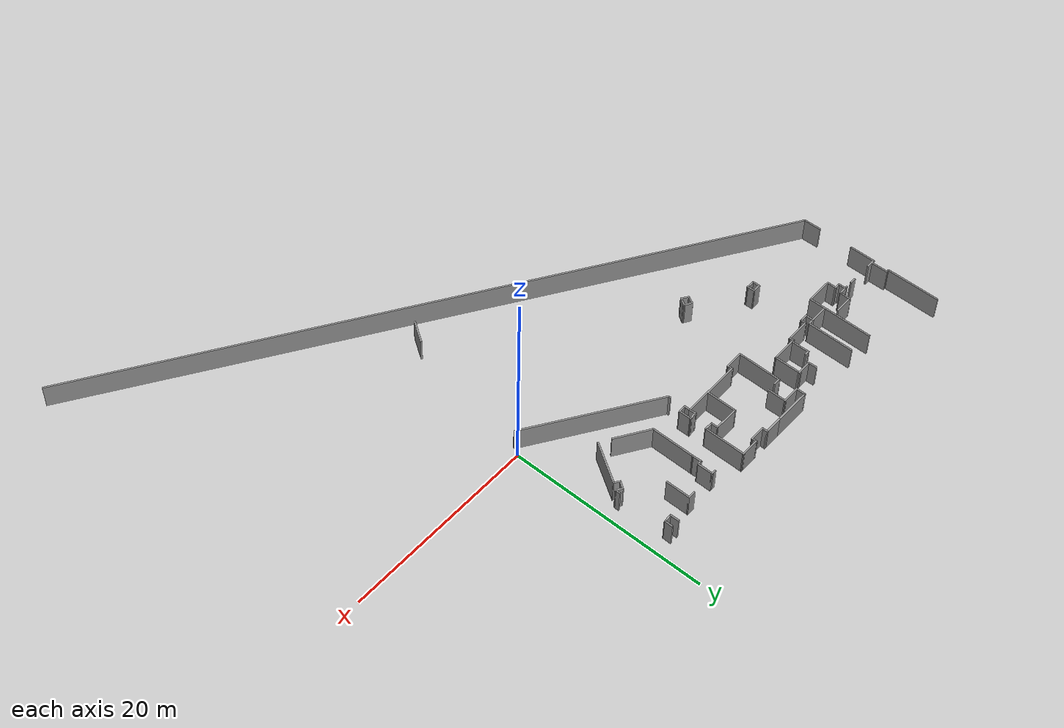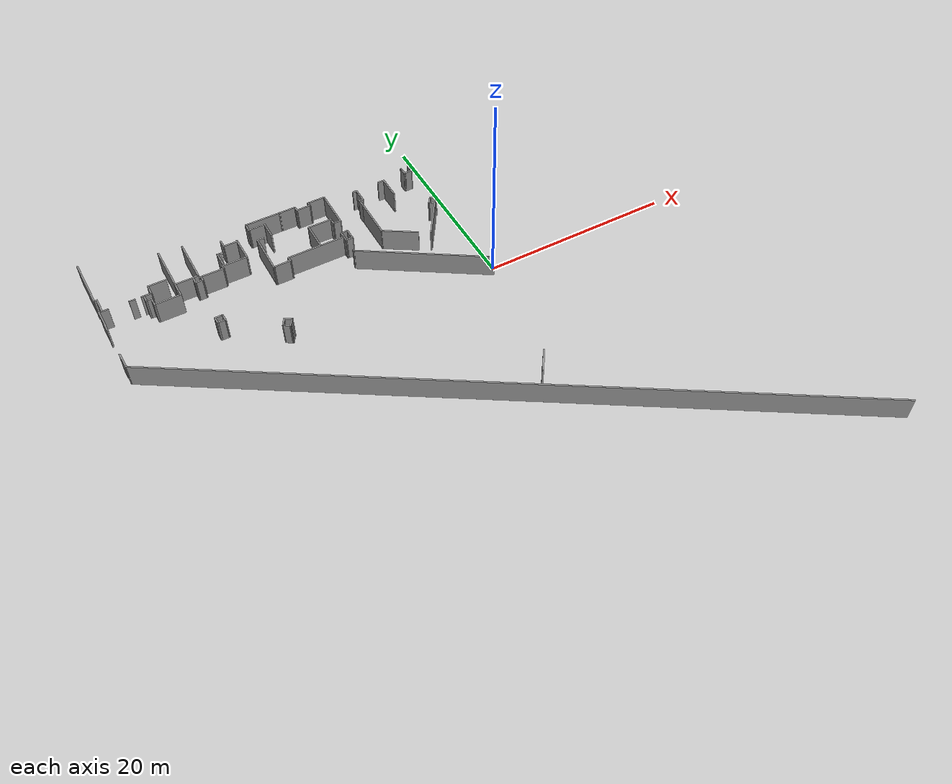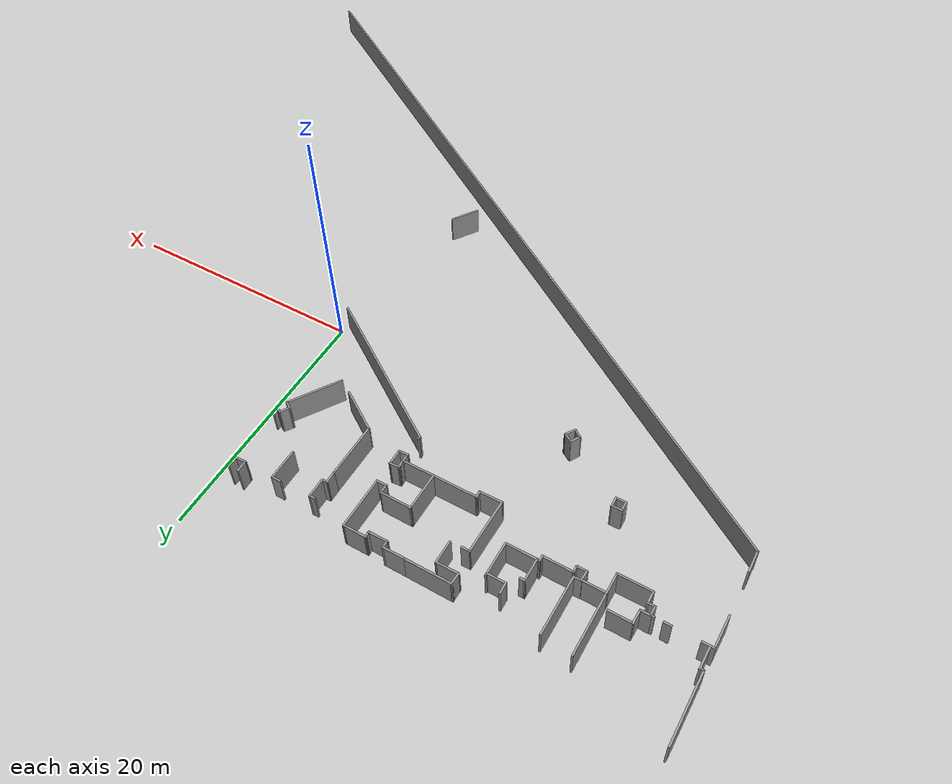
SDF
<sdf version="1.7">
 <model name="HopperFloorGround_Full">
  <pose>0.395792 0.11413 0 0 -0 0</pose>
  <link name="Wall_0">
   <collision name="Wall_0_Collision">
    <geometry><box><size>71.6402 0.15 2.5</size></box></geometry>
    <pose>0 0 1.25 0 -0 0</pose>
   </collision>
   <visual name="Wall_0_Visual">
    <pose>0 0 1.25 0 -0 0</pose>
    <geometry><box><size>71.6402 0.15 2.5</size></box></geometry>
    <material>
     <script><uri>file://media/materials/scripts/gazebo.material</uri><name>Gazebo/Grey</name></script>
     <ambient>1 1 1 1</ambient>
    </material>
    <meta><layer>0</layer></meta>
   </visual>
   <pose>-7.1575 -15.8591 0 0 -0 -0.566616</pose>
  </link>
  <link name="Wall_108">
   <collision name="Wall_108_Collision">
    <geometry><box><size>1.94011 0.15 2.5</size></box></geometry>
    <pose>0 0 1.25 0 -0 0</pose>
   </collision>
   <visual name="Wall_108_Visual">
    <pose>0 0 1.25 0 -0 0</pose>
    <geometry><box><size>1.94011 0.15 2.5</size></box></geometry>
    <material>
     <script><uri>file://media/materials/scripts/gazebo.material</uri><name>Gazebo/Grey</name></script>
     <ambient>1 1 1 1</ambient>
    </material>
    <meta><layer>0</layer></meta>
   </visual>
   <pose>-31.2976 12.103 0 0 -0 3.14159</pose>
  </link>
  <link name="Wall_109">
   <collision name="Wall_109_Collision">
    <geometry><box><size>1.1961 0.15 2.5</size></box></geometry>
    <pose>0 0 1.25 0 -0 0</pose>
   </collision>
   <visual name="Wall_109_Visual">
    <pose>0 0 1.25 0 -0 0</pose>
    <geometry><box><size>1.1961 0.15 2.5</size></box></geometry>
    <material>
     <script><uri>file://media/materials/scripts/gazebo.material</uri><name>Gazebo/Grey</name></script>
     <ambient>1 1 1 1</ambient>
    </material>
    <meta><layer>0</layer></meta>
   </visual>
   <pose>-32.2027 11.58 0 0 -0 -1.59003</pose>
  </link>
  <link name="Wall_110">
   <collision name="Wall_110_Collision">
    <geometry><box><size>0.914316 0.15 2.5</size></box></geometry>
    <pose>0 0 1.25 0 -0 0</pose>
   </collision>
   <visual name="Wall_110_Visual">
    <pose>0 0 1.25 0 -0 0</pose>
    <geometry><box><size>0.914316 0.15 2.5</size></box></geometry>
    <material>
     <script><uri>file://media/materials/scripts/gazebo.material</uri><name>Gazebo/Grey</name></script>
     <ambient>1 1 1 1</ambient>
    </material>
    <meta><layer>0</layer></meta>
   </visual>
   <pose>-32.5949 11.0571 0 0 -0 3.14159</pose>
  </link>
  <link name="Wall_112">
   <collision name="Wall_112_Collision">
    <geometry><box><size>0.75 0.15 2.5</size></box></geometry>
    <pose>0 0 1.25 0 -0 0</pose>
   </collision>
   <visual name="Wall_112_Visual">
    <pose>0 0 1.25 0 -0 0</pose>
    <geometry><box><size>0.75 0.15 2.5</size></box></geometry>
    <material>
     <script><uri>file://media/materials/scripts/gazebo.material</uri><name>Gazebo/Grey</name></script>
     <ambient>1 1 1 1</ambient>
    </material>
    <meta><layer>0</layer></meta>
   </visual>
   <pose>-20.122 12.8829 0 0 -0 3.14159</pose>
  </link>
  <link name="Wall_113">
   <collision name="Wall_113_Collision">
    <geometry><box><size>4.49402 0.15 2.5</size></box></geometry>
    <pose>0 0 1.25 0 -0 0</pose>
   </collision>
   <visual name="Wall_113_Visual">
    <pose>0 0 1.25 0 -0 0</pose>
    <geometry><box><size>4.49402 0.15 2.5</size></box></geometry>
    <material>
     <script><uri>file://media/materials/scripts/gazebo.material</uri><name>Gazebo/Grey</name></script>
     <ambient>1 1 1 1</ambient>
    </material>
    <meta><layer>0</layer></meta>
   </visual>
   <pose>-20.4432 10.711 0 0 -0 -1.58056</pose>
  </link>
  <link name="Wall_114">
   <collision name="Wall_114_Collision">
    <geometry><box><size>1.95508 0.15 2.5</size></box></geometry>
    <pose>0 0 1.25 0 -0 0</pose>
   </collision>
   <visual name="Wall_114_Visual">
    <pose>0 0 1.25 0 -0 0</pose>
    <geometry><box><size>1.95508 0.15 2.5</size></box></geometry>
    <material>
     <script><uri>file://media/materials/scripts/gazebo.material</uri><name>Gazebo/Grey</name></script>
     <ambient>1 1 1 1</ambient>
    </material>
    <meta><layer>0</layer></meta>
   </visual>
   <pose>-19.562 8.5544 0 0 -0 0.016948</pose>
  </link>
  <link name="Wall_115">
   <collision name="Wall_115_Collision">
    <geometry><box><size>0.609872 0.15 2.5</size></box></geometry>
    <pose>0 0 1.25 0 -0 0</pose>
   </collision>
   <visual name="Wall_115_Visual">
    <pose>0 0 1.25 0 -0 0</pose>
    <geometry><box><size>0.609872 0.15 2.5</size></box></geometry>
    <material>
     <script><uri>file://media/materials/scripts/gazebo.material</uri><name>Gazebo/Grey</name></script>
     <ambient>1 1 1 1</ambient>
    </material>
    <meta><layer>0</layer></meta>
   </visual>
   <pose>-18.6749 8.79912 0 0 -0 1.63736</pose>
  </link>
  <link name="Wall_116">
   <collision name="Wall_116_Collision">
    <geometry><box><size>6.23753 0.15 2.5</size></box></geometry>
    <pose>0 0 1.25 0 -0 0</pose>
   </collision>
   <visual name="Wall_116_Visual">
    <pose>0 0 1.25 0 -0 0</pose>
    <geometry><box><size>6.23753 0.15 2.5</size></box></geometry>
    <material>
     <script><uri>file://media/materials/scripts/gazebo.material</uri><name>Gazebo/Grey</name></script>
     <ambient>1 1 1 1</ambient>
    </material>
    <meta><layer>0</layer></meta>
   </visual>
   <pose>-15.6464 9.04384 0 0 -0 0.005025</pose>
  </link>
  <link name="Wall_117">
   <collision name="Wall_117_Collision">
    <geometry><box><size>0.731214 0.15 2.5</size></box></geometry>
    <pose>0 0 1.25 0 -0 0</pose>
   </collision>
   <visual name="Wall_117_Visual">
    <pose>0 0 1.25 0 -0 0</pose>
    <geometry><box><size>0.731214 0.15 2.5</size></box></geometry>
    <material>
     <script><uri>file://media/materials/scripts/gazebo.material</uri><name>Gazebo/Grey</name></script>
     <ambient>1 1 1 1</ambient>
    </material>
    <meta><layer>0</layer></meta>
   </visual>
   <pose>-12.6027 8.76853 0 0 -0 -1.5708</pose>
  </link>
  <link name="Wall_118">
   <collision name="Wall_118_Collision">
    <geometry><box><size>0.85424 0.15 2.5</size></box></geometry>
    <pose>0 0 1.25 0 -0 0</pose>
   </collision>
   <visual name="Wall_118_Visual">
    <pose>0 0 1.25 0 -0 0</pose>
    <geometry><box><size>0.85424 0.15 2.5</size></box></geometry>
    <material>
     <script><uri>file://media/materials/scripts/gazebo.material</uri><name>Gazebo/Grey</name></script>
     <ambient>1 1 1 1</ambient>
    </material>
    <meta><layer>0</layer></meta>
   </visual>
   <pose>-12.2509 8.49322 0 0 -0 0.043451</pose>
  </link>
  <link name="Wall_119">
   <collision name="Wall_119_Collision">
    <geometry><box><size>1.34302 0.15 2.5</size></box></geometry>
    <pose>0 0 1.25 0 -0 0</pose>
   </collision>
   <visual name="Wall_119_Visual">
    <pose>0 0 1.25 0 -0 0</pose>
    <geometry><box><size>1.34302 0.15 2.5</size></box></geometry>
    <material>
     <script><uri>file://media/materials/scripts/gazebo.material</uri><name>Gazebo/Grey</name></script>
     <ambient>1 1 1 1</ambient>
    </material>
    <meta><layer>0</layer></meta>
   </visual>
   <pose>-11.8991 9.10502 0 0 -0 1.5708</pose>
  </link>
  <link name="Wall_120">
   <collision name="Wall_120_Collision">
    <geometry><box><size>0.88671 0.15 2.5</size></box></geometry>
    <pose>0 0 1.25 0 -0 0</pose>
   </collision>
   <visual name="Wall_120_Visual">
    <pose>0 0 1.25 0 -0 0</pose>
    <geometry><box><size>0.88671 0.15 2.5</size></box></geometry>
    <material>
     <script><uri>file://media/materials/scripts/gazebo.material</uri><name>Gazebo/Grey</name></script>
     <ambient>1 1 1 1</ambient>
    </material>
    <meta><layer>0</layer></meta>
   </visual>
   <pose>-12.2662 9.67094 0 0 -0 -3.05845</pose>
  </link>
  <link name="Wall_121">
   <collision name="Wall_121_Collision">
    <geometry><box><size>0.704013 0.15 2.5</size></box></geometry>
    <pose>0 0 1.25 0 -0 0</pose>
   </collision>
   <visual name="Wall_121_Visual">
    <pose>0 0 1.25 0 -0 0</pose>
    <geometry><box><size>0.704013 0.15 2.5</size></box></geometry>
    <material>
     <script><uri>file://media/materials/scripts/gazebo.material</uri><name>Gazebo/Grey</name></script>
     <ambient>1 1 1 1</ambient>
    </material>
    <meta><layer>0</layer></meta>
   </visual>
   <pose>-12.6027 9.36504 0 0 -0 -1.46014</pose>
  </link>
  <link name="Wall_137">
   <collision name="Wall_137_Collision">
    <geometry><box><size>5 0.15 2.5</size></box></geometry>
    <pose>0 0 1.25 0 -0 0</pose>
   </collision>
   <visual name="Wall_137_Visual">
    <pose>0 0 1.25 0 -0 0</pose>
    <geometry><box><size>5 0.15 2.5</size></box></geometry>
    <material>
     <script><uri>file://media/materials/scripts/gazebo.material</uri><name>Gazebo/Grey</name></script>
     <ambient>1 1 1 1</ambient>
    </material>
    <meta><layer>0</layer></meta>
   </visual>
   <pose>-29.7968 13.4907 0 0 -0 1.5708</pose>
  </link>
  <link name="Wall_139">
   <collision name="Wall_139_Collision">
    <geometry><box><size>4.73481 0.15 2.5</size></box></geometry>
    <pose>0 0 1.25 0 -0 0</pose>
   </collision>
   <visual name="Wall_139_Visual">
    <pose>0 0 1.25 0 -0 0</pose>
    <geometry><box><size>4.73481 0.15 2.5</size></box></geometry>
    <material>
     <script><uri>file://media/materials/scripts/gazebo.material</uri><name>Gazebo/Grey</name></script>
     <ambient>1 1 1 1</ambient>
    </material>
    <meta><layer>0</layer></meta>
   </visual>
   <pose>-27.3873 13.3962 0 0 -0 -1.57203</pose>
  </link>
  <link name="Wall_140">
   <collision name="Wall_140_Collision">
    <geometry><box><size>0.679661 0.15 2.5</size></box></geometry>
    <pose>0 0 1.25 0 -0 0</pose>
   </collision>
   <visual name="Wall_140_Visual">
    <pose>0 0 1.25 0 -0 0</pose>
    <geometry><box><size>0.679661 0.15 2.5</size></box></geometry>
    <material>
     <script><uri>file://media/materials/scripts/gazebo.material</uri><name>Gazebo/Grey</name></script>
     <ambient>1 1 1 1</ambient>
    </material>
    <meta><layer>0</layer></meta>
   </visual>
   <pose>-27.6546 11.0906 0 0 -0 -3.09163</pose>
  </link>
  <link name="Wall_145">
   <collision name="Wall_145_Collision">
    <geometry><box><size>1.89901 0.15 2.5</size></box></geometry>
    <pose>0 0 1.25 0 -0 0</pose>
   </collision>
   <visual name="Wall_145_Visual">
    <pose>0 0 1.25 0 -0 0</pose>
    <geometry><box><size>1.89901 0.15 2.5</size></box></geometry>
    <material>
     <script><uri>file://media/materials/scripts/gazebo.material</uri><name>Gazebo/Grey</name></script>
     <ambient>1 1 1 1</ambient>
    </material>
    <meta><layer>0</layer></meta>
   </visual>
   <pose>-16.0528 15.5054 0 0 -0 0</pose>
  </link>
  <link name="Wall_148">
   <collision name="Wall_148_Collision">
    <geometry><box><size>3.84573 0.15 2.5</size></box></geometry>
    <pose>0 0 1.25 0 -0 0</pose>
   </collision>
   <visual name="Wall_148_Visual">
    <pose>0 0 1.25 0 -0 0</pose>
    <geometry><box><size>3.84573 0.15 2.5</size></box></geometry>
    <material>
     <script><uri>file://media/materials/scripts/gazebo.material</uri><name>Gazebo/Grey</name></script>
     <ambient>1 1 1 1</ambient>
    </material>
    <meta><layer>0</layer></meta>
   </visual>
   <pose>-18.7751 15.5087 0 0 -0 -0.001748</pose>
  </link>
  <link name="Wall_150">
   <collision name="Wall_150_Collision">
    <geometry><box><size>1 0.15 2.5</size></box></geometry>
    <pose>0 0 1.25 0 -0 0</pose>
   </collision>
   <visual name="Wall_150_Visual">
    <pose>0 0 1.25 0 -0 0</pose>
    <geometry><box><size>1 0.15 2.5</size></box></geometry>
    <material>
     <script><uri>file://media/materials/scripts/gazebo.material</uri><name>Gazebo/Grey</name></script>
     <ambient>1 1 1 1</ambient>
    </material>
    <meta><layer>0</layer></meta>
   </visual>
   <pose>-20.623 15.0869 0 0 -0 -1.5708</pose>
  </link>
  <link name="Wall_152">
   <collision name="Wall_152_Collision">
    <geometry><box><size>0.651889 0.15 2.5</size></box></geometry>
    <pose>0 0 1.25 0 -0 0</pose>
   </collision>
   <visual name="Wall_152_Visual">
    <pose>0 0 1.25 0 -0 0</pose>
    <geometry><box><size>0.651889 0.15 2.5</size></box></geometry>
    <material>
     <script><uri>file://media/materials/scripts/gazebo.material</uri><name>Gazebo/Grey</name></script>
     <ambient>1 1 1 1</ambient>
    </material>
    <meta><layer>0</layer></meta>
   </visual>
   <pose>-15.1783 15.2545 0 0 -0 -1.5708</pose>
  </link>
  <link name="Wall_153">
   <collision name="Wall_153_Collision">
    <geometry><box><size>1.64054 0.15 2.5</size></box></geometry>
    <pose>0 0 1.25 0 -0 0</pose>
   </collision>
   <visual name="Wall_153_Visual">
    <pose>0 0 1.25 0 -0 0</pose>
    <geometry><box><size>1.64054 0.15 2.5</size></box></geometry>
    <material>
     <script><uri>file://media/materials/scripts/gazebo.material</uri><name>Gazebo/Grey</name></script>
     <ambient>1 1 1 1</ambient>
    </material>
    <meta><layer>0</layer></meta>
   </visual>
   <pose>-14.433 15.0112 0 0 -0 0.010204</pose>
  </link>
  <link name="Wall_154">
   <collision name="Wall_154_Collision">
    <geometry><box><size>0.576116 0.15 2.5</size></box></geometry>
    <pose>0 0 1.25 0 -0 0</pose>
   </collision>
   <visual name="Wall_154_Visual">
    <pose>0 0 1.25 0 -0 0</pose>
    <geometry><box><size>0.576116 0.15 2.5</size></box></geometry>
    <material>
     <script><uri>file://media/materials/scripts/gazebo.material</uri><name>Gazebo/Grey</name></script>
     <ambient>1 1 1 1</ambient>
    </material>
    <meta><layer>0</layer></meta>
   </visual>
   <pose>-13.6954 15.2317 0 0 -0 1.6065</pose>
  </link>
  <link name="Wall_155">
   <collision name="Wall_155_Collision">
    <geometry><box><size>1.95991 0.15 2.5</size></box></geometry>
    <pose>0 0 1.25 0 -0 0</pose>
   </collision>
   <visual name="Wall_155_Visual">
    <pose>0 0 1.25 0 -0 0</pose>
    <geometry><box><size>1.95991 0.15 2.5</size></box></geometry>
    <material>
     <script><uri>file://media/materials/scripts/gazebo.material</uri><name>Gazebo/Grey</name></script>
     <ambient>1 1 1 1</ambient>
    </material>
    <meta><layer>0</layer></meta>
   </visual>
   <pose>-12.7981 15.4446 0 0 -0 0</pose>
  </link>
  <link name="Wall_156">
   <collision name="Wall_156_Collision">
    <geometry><box><size>4.22595 0.15 2.5</size></box></geometry>
    <pose>0 0 1.25 0 -0 0</pose>
   </collision>
   <visual name="Wall_156_Visual">
    <pose>0 0 1.25 0 -0 0</pose>
    <geometry><box><size>4.22595 0.15 2.5</size></box></geometry>
    <material>
     <script><uri>file://media/materials/scripts/gazebo.material</uri><name>Gazebo/Grey</name></script>
     <ambient>1 1 1 1</ambient>
    </material>
    <meta><layer>0</layer></meta>
   </visual>
   <pose>-11.9008 13.4066 0 0 -0 -1.57453</pose>
  </link>
  <link name="Wall_157">
   <collision name="Wall_157_Collision">
    <geometry><box><size>0.910437 0.15 2.5</size></box></geometry>
    <pose>0 0 1.25 0 -0 0</pose>
   </collision>
   <visual name="Wall_157_Visual">
    <pose>0 0 1.25 0 -0 0</pose>
    <geometry><box><size>0.910437 0.15 2.5</size></box></geometry>
    <material>
     <script><uri>file://media/materials/scripts/gazebo.material</uri><name>Gazebo/Grey</name></script>
     <ambient>1 1 1 1</ambient>
    </material>
    <meta><layer>0</layer></meta>
   </visual>
   <pose>-12.2886 11.3687 0 0 -0 3.14159</pose>
  </link>
  <link name="Wall_158">
   <collision name="Wall_158_Collision">
    <geometry><box><size>0.804683 0.15 2.5</size></box></geometry>
    <pose>0 0 1.25 0 -0 0</pose>
   </collision>
   <visual name="Wall_158_Visual">
    <pose>0 0 1.25 0 -0 0</pose>
    <geometry><box><size>0.804683 0.15 2.5</size></box></geometry>
    <material>
     <script><uri>file://media/materials/scripts/gazebo.material</uri><name>Gazebo/Grey</name></script>
     <ambient>1 1 1 1</ambient>
    </material>
    <meta><layer>0</layer></meta>
   </visual>
   <pose>-12.6764 11.6956 0 0 -0 1.59405</pose>
  </link>
  <link name="Wall_159">
   <collision name="Wall_159_Collision">
    <geometry><box><size>2.61386 0.15 2.5</size></box></geometry>
    <pose>0 0 1.25 0 -0 0</pose>
   </collision>
   <visual name="Wall_159_Visual">
    <pose>0 0 1.25 0 -0 0</pose>
    <geometry><box><size>2.61386 0.15 2.5</size></box></geometry>
    <material>
     <script><uri>file://media/materials/scripts/gazebo.material</uri><name>Gazebo/Grey</name></script>
     <ambient>1 1 1 1</ambient>
    </material>
    <meta><layer>0</layer></meta>
   </visual>
   <pose>-13.916 12.0302 0 0 -0 3.13542</pose>
  </link>
  <link name="Wall_161">
   <collision name="Wall_161_Collision">
    <geometry><box><size>3.11574 0.15 2.5</size></box></geometry>
    <pose>0 0 1.25 0 -0 0</pose>
   </collision>
   <visual name="Wall_161_Visual">
    <pose>0 0 1.25 0 -0 0</pose>
    <geometry><box><size>3.11574 0.15 2.5</size></box></geometry>
    <material>
     <script><uri>file://media/materials/scripts/gazebo.material</uri><name>Gazebo/Grey</name></script>
     <ambient>1 1 1 1</ambient>
    </material>
    <meta><layer>0</layer></meta>
   </visual>
   <pose>-15.1555 10.555 0 0 -0 -1.57593</pose>
  </link>
  <link name="Wall_163">
   <collision name="Wall_163_Collision">
    <geometry><box><size>0.293821 0.15 2.5</size></box></geometry>
    <pose>0 0 1.25 0 -0 0</pose>
   </collision>
   <visual name="Wall_163_Visual">
    <pose>0 0 1.25 0 -0 0</pose>
    <geometry><box><size>0.293821 0.15 2.5</size></box></geometry>
    <material>
     <script><uri>file://media/materials/scripts/gazebo.material</uri><name>Gazebo/Grey</name></script>
     <ambient>1 1 1 1</ambient>
    </material>
    <meta><layer>0</layer></meta>
   </visual>
   <pose>-12.5366 6.82613 0 0 -0 -1.42643</pose>
  </link>
  <link name="Wall_164">
   <collision name="Wall_164_Collision">
    <geometry><box><size>14.1631 0.15 2.5</size></box></geometry>
    <pose>0 0 1.25 0 -0 0</pose>
   </collision>
   <visual name="Wall_164_Visual">
    <pose>0 0 1.25 0 -0 0</pose>
    <geometry><box><size>14.1631 0.15 2.5</size></box></geometry>
    <material>
     <script><uri>file://media/materials/scripts/gazebo.material</uri><name>Gazebo/Grey</name></script>
     <ambient>1 1 1 1</ambient>
    </material>
    <meta><layer>0</layer></meta>
   </visual>
   <pose>-6.67032 2.93967 0 0 -0 -0.575834</pose>
  </link>
  <link name="Wall_192">
   <collision name="Wall_192_Collision">
    <geometry><box><size>2.49652 0.15 2.5</size></box></geometry>
    <pose>0 0 1.25 0 -0 0</pose>
   </collision>
   <visual name="Wall_192_Visual">
    <pose>0 0 1.25 0 -0 0</pose>
    <geometry><box><size>2.49652 0.15 2.5</size></box></geometry>
    <material>
     <script><uri>file://media/materials/scripts/gazebo.material</uri><name>Gazebo/Grey</name></script>
     <ambient>1 1 1 1</ambient>
    </material>
    <meta><layer>0</layer></meta>
   </visual>
   <pose>-3.46067 -14.7159 0 0 -0 0.982794</pose>
  </link>
  <link name="Wall_286">
   <collision name="Wall_286_Collision">
    <geometry><box><size>1.87846 0.15 2.5</size></box></geometry>
    <pose>0 0 1.25 0 -0 0</pose>
   </collision>
   <visual name="Wall_286_Visual">
    <pose>0 0 1.25 0 -0 0</pose>
    <geometry><box><size>1.87846 0.15 2.5</size></box></geometry>
    <material>
     <script><uri>file://media/materials/scripts/gazebo.material</uri><name>Gazebo/Grey</name></script>
     <ambient>1 1 1 1</ambient>
    </material>
    <meta><layer>0</layer></meta>
   </visual>
   <pose>-19.759 14.6693 0 0 -0 0.008549</pose>
  </link>
  <link name="Wall_287">
   <collision name="Wall_287_Collision">
    <geometry><box><size>1.88883 0.15 2.5</size></box></geometry>
    <pose>0 0 1.25 0 -0 0</pose>
   </collision>
   <visual name="Wall_287_Visual">
    <pose>0 0 1.25 0 -0 0</pose>
    <geometry><box><size>1.88883 0.15 2.5</size></box></geometry>
    <material>
     <script><uri>file://media/materials/scripts/gazebo.material</uri><name>Gazebo/Grey</name></script>
     <ambient>1 1 1 1</ambient>
    </material>
    <meta><layer>0</layer></meta>
   </visual>
   <pose>-18.895 13.8073 0 0 -0 -1.5708</pose>
  </link>
  <link name="Wall_332">
   <collision name="Wall_332_Collision">
    <geometry><box><size>0.53651 0.15 2.5</size></box></geometry>
    <pose>0 0 1.25 0 -0 0</pose>
   </collision>
   <visual name="Wall_332_Visual">
    <pose>0 0 1.25 0 -0 0</pose>
    <geometry><box><size>0.53651 0.15 2.5</size></box></geometry>
    <material>
     <script><uri>file://media/materials/scripts/gazebo.material</uri><name>Gazebo/Grey</name></script>
     <ambient>1 1 1 1</ambient>
    </material>
    <meta><layer>0</layer></meta>
   </visual>
   <pose>-8.68406 14.6942 0 0 -0 0</pose>
  </link>
  <link name="Wall_333">
   <collision name="Wall_333_Collision">
    <geometry><box><size>1.63501 0.15 2.5</size></box></geometry>
    <pose>0 0 1.25 0 -0 0</pose>
   </collision>
   <visual name="Wall_333_Visual">
    <pose>0 0 1.25 0 -0 0</pose>
    <geometry><box><size>1.63501 0.15 2.5</size></box></geometry>
    <material>
     <script><uri>file://media/materials/scripts/gazebo.material</uri><name>Gazebo/Grey</name></script>
     <ambient>1 1 1 1</ambient>
    </material>
    <meta><layer>0</layer></meta>
   </visual>
   <pose>-8.49081 13.9517 0 0 -0 -1.5708</pose>
  </link>
  <link name="Wall_334">
   <collision name="Wall_334_Collision">
    <geometry><box><size>0.537045 0.15 2.5</size></box></geometry>
    <pose>0 0 1.25 0 -0 0</pose>
   </collision>
   <visual name="Wall_334_Visual">
    <pose>0 0 1.25 0 -0 0</pose>
    <geometry><box><size>0.537045 0.15 2.5</size></box></geometry>
    <material>
     <script><uri>file://media/materials/scripts/gazebo.material</uri><name>Gazebo/Grey</name></script>
     <ambient>1 1 1 1</ambient>
    </material>
    <meta><layer>0</layer></meta>
   </visual>
   <pose>-8.68406 13.199 0 0 -0 -3.08901</pose>
  </link>
  <link name="Wall_335">
   <collision name="Wall_335_Collision">
    <geometry><box><size>1.00463 0.15 2.5</size></box></geometry>
    <pose>0 0 1.25 0 -0 0</pose>
   </collision>
   <visual name="Wall_335_Visual">
    <pose>0 0 1.25 0 -0 0</pose>
    <geometry><box><size>1.00463 0.15 2.5</size></box></geometry>
    <material>
     <script><uri>file://media/materials/scripts/gazebo.material</uri><name>Gazebo/Grey</name></script>
     <ambient>1 1 1 1</ambient>
    </material>
    <meta><layer>0</layer></meta>
   </visual>
   <pose>-8.86715 12.7616 0 0 -0 -1.54699</pose>
  </link>
  <link name="Wall_337">
   <collision name="Wall_337_Collision">
    <geometry><box><size>4.50338 0.15 2.5</size></box></geometry>
    <pose>0 0 1.25 0 -0 0</pose>
   </collision>
   <visual name="Wall_337_Visual">
    <pose>0 0 1.25 0 -0 0</pose>
    <geometry><box><size>4.50338 0.15 2.5</size></box></geometry>
    <material>
     <script><uri>file://media/materials/scripts/gazebo.material</uri><name>Gazebo/Grey</name></script>
     <ambient>1 1 1 1</ambient>
    </material>
    <meta><layer>0</layer></meta>
   </visual>
   <pose>-8.86715 10.1578 0 0 -0 1.56612</pose>
  </link>
  <link name="Wall_339">
   <collision name="Wall_339_Collision">
    <geometry><box><size>3.8633 0.15 2.5</size></box></geometry>
    <pose>0 0 1.25 0 -0 0</pose>
   </collision>
   <visual name="Wall_339_Visual">
    <pose>0 0 1.25 0 -0 0</pose>
    <geometry><box><size>3.8633 0.15 2.5</size></box></geometry>
    <material>
     <script><uri>file://media/materials/scripts/gazebo.material</uri><name>Gazebo/Grey</name></script>
     <ambient>1 1 1 1</ambient>
    </material>
    <meta><layer>0</layer></meta>
   </visual>
   <pose>-7.31093 6.98431 0 0 -0 -0.566729</pose>
  </link>
  <link name="Wall_343">
   <collision name="Wall_343_Collision">
    <geometry><box><size>0.53651 0.15 2.5</size></box></geometry>
    <pose>0 0 1.25 0 -0 0</pose>
   </collision>
   <visual name="Wall_343_Visual">
    <pose>0 0 1.25 0 -0 0</pose>
    <geometry><box><size>0.53651 0.15 2.5</size></box></geometry>
    <material>
     <script><uri>file://media/materials/scripts/gazebo.material</uri><name>Gazebo/Grey</name></script>
     <ambient>1 1 1 1</ambient>
    </material>
    <meta><layer>0</layer></meta>
   </visual>
   <pose>-1.72687 9.8628 0 0 -0 -1.62338</pose>
  </link>
  <link name="Wall_344">
   <collision name="Wall_344_Collision">
    <geometry><box><size>0.75 0.15 2.5</size></box></geometry>
    <pose>0 0 1.25 0 -0 0</pose>
   </collision>
   <visual name="Wall_344_Visual">
    <pose>0 0 1.25 0 -0 0</pose>
    <geometry><box><size>0.75 0.15 2.5</size></box></geometry>
    <material>
     <script><uri>file://media/materials/scripts/gazebo.material</uri><name>Gazebo/Grey</name></script>
     <ambient>1 1 1 1</ambient>
    </material>
    <meta><layer>0</layer></meta>
   </visual>
   <pose>-1.99685 9.81954 0 0 -0 2.61799</pose>
  </link>
  <link name="Wall_345">
   <collision name="Wall_345_Collision">
    <geometry><box><size>0.896135 0.15 2.5</size></box></geometry>
    <pose>0 0 1.25 0 -0 0</pose>
   </collision>
   <visual name="Wall_345_Visual">
    <pose>0 0 1.25 0 -0 0</pose>
    <geometry><box><size>0.896135 0.15 2.5</size></box></geometry>
    <material>
     <script><uri>file://media/materials/scripts/gazebo.material</uri><name>Gazebo/Grey</name></script>
     <ambient>1 1 1 1</ambient>
    </material>
    <meta><layer>0</layer></meta>
   </visual>
   <pose>-2.47491 9.66697 0 0 -0 -2.19568</pose>
  </link>
  <link name="Wall_346">
   <collision name="Wall_346_Collision">
    <geometry><box><size>0.748295 0.15 2.5</size></box></geometry>
    <pose>0 0 1.25 0 -0 0</pose>
   </collision>
   <visual name="Wall_346_Visual">
    <pose>0 0 1.25 0 -0 0</pose>
    <geometry><box><size>0.748295 0.15 2.5</size></box></geometry>
    <material>
     <script><uri>file://media/materials/scripts/gazebo.material</uri><name>Gazebo/Grey</name></script>
     <ambient>1 1 1 1</ambient>
    </material>
    <meta><layer>0</layer></meta>
   </visual>
   <pose>-2.44904 9.19149 0 0 -0 -0.616297</pose>
  </link>
  <link name="Wall_347">
   <collision name="Wall_347_Collision">
    <geometry><box><size>4.5343 0.15 2.5</size></box></geometry>
    <pose>0 0 1.25 0 -0 0</pose>
   </collision>
   <visual name="Wall_347_Visual">
    <pose>0 0 1.25 0 -0 0</pose>
    <geometry><box><size>4.5343 0.15 2.5</size></box></geometry>
    <material>
     <script><uri>file://media/materials/scripts/gazebo.material</uri><name>Gazebo/Grey</name></script>
     <ambient>1 1 1 1</ambient>
    </material>
    <meta><layer>0</layer></meta>
   </visual>
   <pose>-3.39497 7.17757 0 0 -0 -2.14464</pose>
  </link>
  <link name="Wall_428">
   <collision name="Wall_428_Collision">
    <geometry><box><size>0.969126 0.15 2.5</size></box></geometry>
    <pose>0 0 1.25 0 -0 0</pose>
   </collision>
   <visual name="Wall_428_Visual">
    <pose>0 0 1.25 0 -0 0</pose>
    <geometry><box><size>0.969126 0.15 2.5</size></box></geometry>
    <material>
     <script><uri>file://media/materials/scripts/gazebo.material</uri><name>Gazebo/Grey</name></script>
     <ambient>1 1 1 1</ambient>
    </material>
    <meta><layer>0</layer></meta>
   </visual>
   <pose>-2.80354 15.1119 0 0 -0 -1.54223</pose>
  </link>
  <link name="Wall_429">
   <collision name="Wall_429_Collision">
    <geometry><box><size>0.92342 0.15 2.5</size></box></geometry>
    <pose>0 0 1.25 0 -0 0</pose>
   </collision>
   <visual name="Wall_429_Visual">
    <pose>0 0 1.25 0 -0 0</pose>
    <geometry><box><size>0.92342 0.15 2.5</size></box></geometry>
    <material>
     <script><uri>file://media/materials/scripts/gazebo.material</uri><name>Gazebo/Grey</name></script>
     <ambient>1 1 1 1</ambient>
    </material>
    <meta><layer>0</layer></meta>
   </visual>
   <pose>-2.40584 14.7259 0 0 -0 0.060532</pose>
  </link>
  <link name="Wall_430">
   <collision name="Wall_430_Collision">
    <geometry><box><size>0.898975 0.15 2.5</size></box></geometry>
    <pose>0 0 1.25 0 -0 0</pose>
   </collision>
   <visual name="Wall_430_Visual">
    <pose>0 0 1.25 0 -0 0</pose>
    <geometry><box><size>0.898975 0.15 2.5</size></box></geometry>
    <material>
     <script><uri>file://media/materials/scripts/gazebo.material</uri><name>Gazebo/Grey</name></script>
     <ambient>1 1 1 1</ambient>
    </material>
    <meta><layer>0</layer></meta>
   </visual>
   <pose>-2.00814 15.1236 0 0 -0 1.53956</pose>
  </link>
  <link name="Wall_45">
   <collision name="Wall_45_Collision">
    <geometry><box><size>1.81221 0.15 2.5</size></box></geometry>
    <pose>0 0 1.25 0 -0 0</pose>
   </collision>
   <visual name="Wall_45_Visual">
    <pose>0 0 1.25 0 -0 0</pose>
    <geometry><box><size>1.81221 0.15 2.5</size></box></geometry>
    <material>
     <script><uri>file://media/materials/scripts/gazebo.material</uri><name>Gazebo/Grey</name></script>
     <ambient>1 1 1 1</ambient>
    </material>
    <meta><layer>0</layer></meta>
   </visual>
   <pose>-37.3348 4.15908 0 0 -0 1.59289</pose>
  </link>
  <link name="Wall_47">
   <collision name="Wall_47_Collision">
    <geometry><box><size>0.75 0.15 2.5</size></box></geometry>
    <pose>0 0 1.25 0 -0 0</pose>
   </collision>
   <visual name="Wall_47_Visual">
    <pose>0 0 1.25 0 -0 0</pose>
    <geometry><box><size>0.75 0.15 2.5</size></box></geometry>
    <material>
     <script><uri>file://media/materials/scripts/gazebo.material</uri><name>Gazebo/Grey</name></script>
     <ambient>1 1 1 1</ambient>
    </material>
    <meta><layer>0</layer></meta>
   </visual>
   <pose>-28.0004 4.60612 0 0 -0 -1.5708</pose>
  </link>
  <link name="Wall_48">
   <collision name="Wall_48_Collision">
    <geometry><box><size>0.934429 0.15 2.5</size></box></geometry>
    <pose>0 0 1.25 0 -0 0</pose>
   </collision>
   <visual name="Wall_48_Visual">
    <pose>0 0 1.25 0 -0 0</pose>
    <geometry><box><size>0.934429 0.15 2.5</size></box></geometry>
    <material>
     <script><uri>file://media/materials/scripts/gazebo.material</uri><name>Gazebo/Grey</name></script>
     <ambient>1 1 1 1</ambient>
    </material>
    <meta><layer>0</layer></meta>
   </visual>
   <pose>-27.6081 4.30612 0 0 -0 0</pose>
  </link>
  <link name="Wall_49">
   <collision name="Wall_49_Collision">
    <geometry><box><size>0.854262 0.15 2.5</size></box></geometry>
    <pose>0 0 1.25 0 -0 0</pose>
   </collision>
   <visual name="Wall_49_Visual">
    <pose>0 0 1.25 0 -0 0</pose>
    <geometry><box><size>0.854262 0.15 2.5</size></box></geometry>
    <material>
     <script><uri>file://media/materials/scripts/gazebo.material</uri><name>Gazebo/Grey</name></script>
     <ambient>1 1 1 1</ambient>
    </material>
    <meta><layer>0</layer></meta>
   </visual>
   <pose>-27.226 4.65811 0 0 -0 1.59936</pose>
  </link>
  <link name="Wall_50">
   <collision name="Wall_50_Collision">
    <geometry><box><size>0.91458 0.15 2.5</size></box></geometry>
    <pose>0 0 1.25 0 -0 0</pose>
   </collision>
   <visual name="Wall_50_Visual">
    <pose>0 0 1.25 0 -0 0</pose>
    <geometry><box><size>0.91458 0.15 2.5</size></box></geometry>
    <material>
     <script><uri>file://media/materials/scripts/gazebo.material</uri><name>Gazebo/Grey</name></script>
     <ambient>1 1 1 1</ambient>
    </material>
    <meta><layer>0</layer></meta>
   </visual>
   <pose>-27.6182 5.00004 0 0 -0 -3.11528</pose>
  </link>
  <link name="Wall_52">
   <collision name="Wall_52_Collision">
    <geometry><box><size>0.915902 0.15 2.5</size></box></geometry>
    <pose>0 0 1.25 0 -0 0</pose>
   </collision>
   <visual name="Wall_52_Visual">
    <pose>0 0 1.25 0 -0 0</pose>
    <geometry><box><size>0.915902 0.15 2.5</size></box></geometry>
    <material>
     <script><uri>file://media/materials/scripts/gazebo.material</uri><name>Gazebo/Grey</name></script>
     <ambient>1 1 1 1</ambient>
    </material>
    <meta><layer>0</layer></meta>
   </visual>
   <pose>-22.5194 1.33937 0 0 -0 -2.0932</pose>
  </link>
  <link name="Wall_529">
   <collision name="Wall_529_Collision">
    <geometry><box><size>0.797724 0.15 2.5</size></box></geometry>
    <pose>0 0 1.25 0 -0 0</pose>
   </collision>
   <visual name="Wall_529_Visual">
    <pose>0 0 1.25 0 -0 0</pose>
    <geometry><box><size>0.797724 0.15 2.5</size></box></geometry>
    <material>
     <script><uri>file://media/materials/scripts/gazebo.material</uri><name>Gazebo/Grey</name></script>
     <ambient>1 1 1 1</ambient>
    </material>
    <meta><layer>0</layer></meta>
   </visual>
   <pose>-5.59082 14.7582 0 0 -0 0</pose>
  </link>
  <link name="Wall_53">
   <collision name="Wall_53_Collision">
    <geometry><box><size>0.858557 0.15 2.5</size></box></geometry>
    <pose>0 0 1.25 0 -0 0</pose>
   </collision>
   <visual name="Wall_53_Visual">
    <pose>0 0 1.25 0 -0 0</pose>
    <geometry><box><size>0.858557 0.15 2.5</size></box></geometry>
    <material>
     <script><uri>file://media/materials/scripts/gazebo.material</uri><name>Gazebo/Grey</name></script>
     <ambient>1 1 1 1</ambient>
    </material>
    <meta><layer>0</layer></meta>
   </visual>
   <pose>-22.4188 0.806363 0 0 -0 -0.603749</pose>
  </link>
  <link name="Wall_530">
   <collision name="Wall_530_Collision">
    <geometry><box><size>2.52499 0.15 2.5</size></box></geometry>
    <pose>0 0 1.25 0 -0 0</pose>
   </collision>
   <visual name="Wall_530_Visual">
    <pose>0 0 1.25 0 -0 0</pose>
    <geometry><box><size>2.52499 0.15 2.5</size></box></geometry>
    <material>
     <script><uri>file://media/materials/scripts/gazebo.material</uri><name>Gazebo/Grey</name></script>
     <ambient>1 1 1 1</ambient>
    </material>
    <meta><layer>0</layer></meta>
   </visual>
   <pose>-5.26696 13.5707 0 0 -0 -1.5708</pose>
  </link>
  <link name="Wall_54">
   <collision name="Wall_54_Collision">
    <geometry><box><size>0.975637 0.15 2.5</size></box></geometry>
    <pose>0 0 1.25 0 -0 0</pose>
   </collision>
   <visual name="Wall_54_Visual">
    <pose>0 0 1.25 0 -0 0</pose>
    <geometry><box><size>0.975637 0.15 2.5</size></box></geometry>
    <material>
     <script><uri>file://media/materials/scripts/gazebo.material</uri><name>Gazebo/Grey</name></script>
     <ambient>1 1 1 1</ambient>
    </material>
    <meta><layer>0</layer></meta>
   </visual>
   <pose>-21.8959 0.947158 0 0 -0 0.976037</pose>
  </link>
  <link name="Wall_55">
   <collision name="Wall_55_Collision">
    <geometry><box><size>0.898538 0.15 2.5</size></box></geometry>
    <pose>0 0 1.25 0 -0 0</pose>
   </collision>
   <visual name="Wall_55_Visual">
    <pose>0 0 1.25 0 -0 0</pose>
    <geometry><box><size>0.898538 0.15 2.5</size></box></geometry>
    <material>
     <script><uri>file://media/materials/scripts/gazebo.material</uri><name>Gazebo/Grey</name></script>
     <ambient>1 1 1 1</ambient>
    </material>
    <meta><layer>0</layer></meta>
   </visual>
   <pose>-21.9864 1.48017 0 0 -0 2.60578</pose>
  </link>
  <link name="Wall_57">
   <collision name="Wall_57_Collision">
    <geometry><box><size>2.65108 0.15 2.5</size></box></geometry>
    <pose>0 0 1.25 0 -0 0</pose>
   </collision>
   <visual name="Wall_57_Visual">
    <pose>0 0 1.25 0 -0 0</pose>
    <geometry><box><size>2.65108 0.15 2.5</size></box></geometry>
    <material>
     <script><uri>file://media/materials/scripts/gazebo.material</uri><name>Gazebo/Grey</name></script>
     <ambient>1 1 1 1</ambient>
    </material>
    <meta><layer>0</layer></meta>
   </visual>
   <pose>-37.405 9.83262 0 0 -0 1.5708</pose>
  </link>
  <link name="Wall_58">
   <collision name="Wall_58_Collision">
    <geometry><box><size>1 0.15 2.5</size></box></geometry>
    <pose>0 0 1.25 0 -0 0</pose>
   </collision>
   <visual name="Wall_58_Visual">
    <pose>0 0 1.25 0 -0 0</pose>
    <geometry><box><size>1 0.15 2.5</size></box></geometry>
    <material>
     <script><uri>file://media/materials/scripts/gazebo.material</uri><name>Gazebo/Grey</name></script>
     <ambient>1 1 1 1</ambient>
    </material>
    <meta><layer>0</layer></meta>
   </visual>
   <pose>-36.98 11.0832 0 0 -0 0</pose>
  </link>
  <link name="Wall_593">
   <collision name="Wall_593_Collision">
    <geometry><box><size>0.936537 0.15 2.5</size></box></geometry>
    <pose>0 0 1.25 0 -0 0</pose>
   </collision>
   <visual name="Wall_593_Visual">
    <pose>0 0 1.25 0 -0 0</pose>
    <geometry><box><size>0.936537 0.15 2.5</size></box></geometry>
    <material>
     <script><uri>file://media/materials/scripts/gazebo.material</uri><name>Gazebo/Grey</name></script>
     <ambient>1 1 1 1</ambient>
    </material>
    <meta><layer>0</layer></meta>
   </visual>
   <pose>-23.7133 14.1089 0 0 -0 -1.54449</pose>
  </link>
  <link name="Wall_594">
   <collision name="Wall_594_Collision">
    <geometry><box><size>1.59838 0.15 2.5</size></box></geometry>
    <pose>0 0 1.25 0 -0 0</pose>
   </collision>
   <visual name="Wall_594_Visual">
    <pose>0 0 1.25 0 -0 0</pose>
    <geometry><box><size>1.59838 0.15 2.5</size></box></geometry>
    <material>
     <script><uri>file://media/materials/scripts/gazebo.material</uri><name>Gazebo/Grey</name></script>
     <ambient>1 1 1 1</ambient>
    </material>
    <meta><layer>0</layer></meta>
   </visual>
   <pose>-22.9788 13.7158 0 0 -0 0</pose>
  </link>
  <link name="Wall_596">
   <collision name="Wall_596_Collision">
    <geometry><box><size>0.5 0.15 2.5</size></box></geometry>
    <pose>0 0 1.25 0 -0 0</pose>
   </collision>
   <visual name="Wall_596_Visual">
    <pose>0 0 1.25 0 -0 0</pose>
    <geometry><box><size>0.5 0.15 2.5</size></box></geometry>
    <material>
     <script><uri>file://media/materials/scripts/gazebo.material</uri><name>Gazebo/Grey</name></script>
     <ambient>1 1 1 1</ambient>
    </material>
    <meta><layer>0</layer></meta>
   </visual>
   <pose>-24.5194 12.9295 0 0 -0 3.14159</pose>
  </link>
  <link name="Wall_597">
   <collision name="Wall_597_Collision">
    <geometry><box><size>1.82645 0.15 2.5</size></box></geometry>
    <pose>0 0 1.25 0 -0 0</pose>
   </collision>
   <visual name="Wall_597_Visual">
    <pose>0 0 1.25 0 -0 0</pose>
    <geometry><box><size>1.82645 0.15 2.5</size></box></geometry>
    <material>
     <script><uri>file://media/materials/scripts/gazebo.material</uri><name>Gazebo/Grey</name></script>
     <ambient>1 1 1 1</ambient>
    </material>
    <meta><layer>0</layer></meta>
   </visual>
   <pose>-24.6849 12.0915 0 0 -0 -1.5595</pose>
  </link>
  <link name="Wall_60">
   <collision name="Wall_60_Collision">
    <geometry><box><size>0.640034 0.15 2.5</size></box></geometry>
    <pose>0 0 1.25 0 -0 0</pose>
   </collision>
   <visual name="Wall_60_Visual">
    <pose>0 0 1.25 0 -0 0</pose>
    <geometry><box><size>0.640034 0.15 2.5</size></box></geometry>
    <material>
     <script><uri>file://media/materials/scripts/gazebo.material</uri><name>Gazebo/Grey</name></script>
     <ambient>1 1 1 1</ambient>
    </material>
    <meta><layer>0</layer></meta>
   </visual>
   <pose>-34.1518 11.0569 0 0 -0 -0.035699</pose>
  </link>
  <link name="Wall_62">
   <collision name="Wall_62_Collision">
    <geometry><box><size>0.377371 0.15 2.5</size></box></geometry>
    <pose>0 0 1.25 0 -0 0</pose>
   </collision>
   <visual name="Wall_62_Visual">
    <pose>0 0 1.25 0 -0 0</pose>
    <geometry><box><size>0.377371 0.15 2.5</size></box></geometry>
    <material>
     <script><uri>file://media/materials/scripts/gazebo.material</uri><name>Gazebo/Grey</name></script>
     <ambient>1 1 1 1</ambient>
    </material>
    <meta><layer>0</layer></meta>
   </visual>
   <pose>-33.0762 11.0482 0 0 -0 0</pose>
  </link>
  <link name="Wall_63">
   <collision name="Wall_63_Collision">
    <geometry><box><size>0.832112 0.15 2.5</size></box></geometry>
    <pose>0 0 1.25 0 -0 0</pose>
   </collision>
   <visual name="Wall_63_Visual">
    <pose>0 0 1.25 0 -0 0</pose>
    <geometry><box><size>0.832112 0.15 2.5</size></box></geometry>
    <material>
     <script><uri>file://media/materials/scripts/gazebo.material</uri><name>Gazebo/Grey</name></script>
     <ambient>1 1 1 1</ambient>
    </material>
    <meta><layer>0</layer></meta>
   </visual>
   <pose>-32.9625 10.7071 0 0 -0 -1.5708</pose>
  </link>
  <link name="Wall_64">
   <collision name="Wall_64_Collision">
    <geometry><box><size>0.674702 0.15 2.5</size></box></geometry>
    <pose>0 0 1.25 0 -0 0</pose>
   </collision>
   <visual name="Wall_64_Visual">
    <pose>0 0 1.25 0 -0 0</pose>
    <geometry><box><size>0.674702 0.15 2.5</size></box></geometry>
    <material>
     <script><uri>file://media/materials/scripts/gazebo.material</uri><name>Gazebo/Grey</name></script>
     <ambient>1 1 1 1</ambient>
    </material>
    <meta><layer>0</layer></meta>
   </visual>
   <pose>-32.7001 10.3661 0 0 -0 0</pose>
  </link>
  <link name="Wall_65">
   <collision name="Wall_65_Collision">
    <geometry><box><size>1.04217 0.15 2.5</size></box></geometry>
    <pose>0 0 1.25 0 -0 0</pose>
   </collision>
   <visual name="Wall_65_Visual">
    <pose>0 0 1.25 0 -0 0</pose>
    <geometry><box><size>1.04217 0.15 2.5</size></box></geometry>
    <material>
     <script><uri>file://media/materials/scripts/gazebo.material</uri><name>Gazebo/Grey</name></script>
     <ambient>1 1 1 1</ambient>
    </material>
    <meta><layer>0</layer></meta>
   </visual>
   <pose>-32.4378 9.92007 0 0 -0 -1.5708</pose>
  </link>
  <link name="Wall_66">
   <collision name="Wall_66_Collision">
    <geometry><box><size>2.791 0.15 2.5</size></box></geometry>
    <pose>0 0 1.25 0 -0 0</pose>
   </collision>
   <visual name="Wall_66_Visual">
    <pose>0 0 1.25 0 -0 0</pose>
    <geometry><box><size>2.791 0.15 2.5</size></box></geometry>
    <material>
     <script><uri>file://media/materials/scripts/gazebo.material</uri><name>Gazebo/Grey</name></script>
     <ambient>1 1 1 1</ambient>
    </material>
    <meta><layer>0</layer></meta>
   </visual>
   <pose>-31.1173 9.47408 0 0 -0 0</pose>
  </link>
  <link name="Wall_67">
   <collision name="Wall_67_Collision">
    <geometry><box><size>1.7416 0.15 2.5</size></box></geometry>
    <pose>0 0 1.25 0 -0 0</pose>
   </collision>
   <visual name="Wall_67_Visual">
    <pose>0 0 1.25 0 -0 0</pose>
    <geometry><box><size>1.7416 0.15 2.5</size></box></geometry>
    <material>
     <script><uri>file://media/materials/scripts/gazebo.material</uri><name>Gazebo/Grey</name></script>
     <ambient>1 1 1 1</ambient>
    </material>
    <meta><layer>0</layer></meta>
   </visual>
   <pose>-29.7968 10.2699 0 0 -0 1.5708</pose>
  </link>
  <link name="Wall_68">
   <collision name="Wall_68_Collision">
    <geometry><box><size>2.00428 0.15 2.5</size></box></geometry>
    <pose>0 0 1.25 0 -0 0</pose>
   </collision>
   <visual name="Wall_68_Visual">
    <pose>0 0 1.25 0 -0 0</pose>
    <geometry><box><size>2.00428 0.15 2.5</size></box></geometry>
    <material>
     <script><uri>file://media/materials/scripts/gazebo.material</uri><name>Gazebo/Grey</name></script>
     <ambient>1 1 1 1</ambient>
    </material>
    <meta><layer>0</layer></meta>
   </visual>
   <pose>-28.8698 11.0569 0 0 -0 -0.009434</pose>
  </link>
  <link name="Wall_69">
   <collision name="Wall_69_Collision">
    <geometry><box><size>0.885415 0.15 2.5</size></box></geometry>
    <pose>0 0 1.25 0 -0 0</pose>
   </collision>
   <visual name="Wall_69_Visual">
    <pose>0 0 1.25 0 -0 0</pose>
    <geometry><box><size>0.885415 0.15 2.5</size></box></geometry>
    <material>
     <script><uri>file://media/materials/scripts/gazebo.material</uri><name>Gazebo/Grey</name></script>
     <ambient>1 1 1 1</ambient>
    </material>
    <meta><layer>0</layer></meta>
   </visual>
   <pose>-27.9603 10.6809 0 0 -0 -1.61838</pose>
  </link>
  <link name="Wall_70">
   <collision name="Wall_70_Collision">
    <geometry><box><size>0.919563 0.15 2.5</size></box></geometry>
    <pose>0 0 1.25 0 -0 0</pose>
   </collision>
   <visual name="Wall_70_Visual">
    <pose>0 0 1.25 0 -0 0</pose>
    <geometry><box><size>0.919563 0.15 2.5</size></box></geometry>
    <material>
     <script><uri>file://media/materials/scripts/gazebo.material</uri><name>Gazebo/Grey</name></script>
     <ambient>1 1 1 1</ambient>
    </material>
    <meta><layer>0</layer></meta>
   </visual>
   <pose>-27.593 10.3136 0 0 -0 0</pose>
  </link>
  <link name="Wall_71">
   <collision name="Wall_71_Collision">
    <geometry><box><size>0.639722 0.15 2.5</size></box></geometry>
    <pose>0 0 1.25 0 -0 0</pose>
   </collision>
   <visual name="Wall_71_Visual">
    <pose>0 0 1.25 0 -0 0</pose>
    <geometry><box><size>0.639722 0.15 2.5</size></box></geometry>
    <material>
     <script><uri>file://media/materials/scripts/gazebo.material</uri><name>Gazebo/Grey</name></script>
     <ambient>1 1 1 1</ambient>
    </material>
    <meta><layer>0</layer></meta>
   </visual>
   <pose>-27.217 10.5585 0 0 -0 1.6065</pose>
  </link>
  <link name="Wall_72">
   <collision name="Wall_72_Collision">
    <geometry><box><size>2.51142 0.15 2.5</size></box></geometry>
    <pose>0 0 1.25 0 -0 0</pose>
   </collision>
   <visual name="Wall_72_Visual">
    <pose>0 0 1.25 0 -0 0</pose>
    <geometry><box><size>2.51142 0.15 2.5</size></box></geometry>
    <material>
     <script><uri>file://media/materials/scripts/gazebo.material</uri><name>Gazebo/Grey</name></script>
     <ambient>1 1 1 1</ambient>
    </material>
    <meta><layer>0</layer></meta>
   </visual>
   <pose>-26.0452 10.7946 0 0 -0 -0.007407</pose>
  </link>
  <link name="Wall_73">
   <collision name="Wall_73_Collision">
    <geometry><box><size>0.536279 0.15 2.5</size></box></geometry>
    <pose>0 0 1.25 0 -0 0</pose>
   </collision>
   <visual name="Wall_73_Visual">
    <pose>0 0 1.25 0 -0 0</pose>
    <geometry><box><size>0.536279 0.15 2.5</size></box></geometry>
    <material>
     <script><uri>file://media/materials/scripts/gazebo.material</uri><name>Gazebo/Grey</name></script>
     <ambient>1 1 1 1</ambient>
    </material>
    <meta><layer>0</layer></meta>
   </visual>
   <pose>-24.8667 10.9787 0 0 -0 1.58186</pose>
  </link>
  <link name="Wall_74">
   <collision name="Wall_74_Collision">
    <geometry><box><size>2.77351 0.15 2.5</size></box></geometry>
    <pose>0 0 1.25 0 -0 0</pose>
   </collision>
   <visual name="Wall_74_Visual">
    <pose>0 0 1.25 0 -0 0</pose>
    <geometry><box><size>2.77351 0.15 2.5</size></box></geometry>
    <material>
     <script><uri>file://media/materials/scripts/gazebo.material</uri><name>Gazebo/Grey</name></script>
     <ambient>1 1 1 1</ambient>
    </material>
    <meta><layer>0</layer></meta>
   </visual>
   <pose>-23.5571 11.1715 0 0 -0 0</pose>
  </link>
  <link name="Wall_75">
   <collision name="Wall_75_Collision">
    <geometry><box><size>2.80793 0.15 2.5</size></box></geometry>
    <pose>0 0 1.25 0 -0 0</pose>
   </collision>
   <visual name="Wall_75_Visual">
    <pose>0 0 1.25 0 -0 0</pose>
    <geometry><box><size>2.80793 0.15 2.5</size></box></geometry>
    <material>
     <script><uri>file://media/materials/scripts/gazebo.material</uri><name>Gazebo/Grey</name></script>
     <ambient>1 1 1 1</ambient>
    </material>
    <meta><layer>0</layer></meta>
   </visual>
   <pose>-22.2519 12.5003 0 0 -0 1.57577</pose>
  </link>
  <link name="Wall_77">
   <collision name="Wall_77_Collision">
    <geometry><box><size>1.74169 0.15 2.5</size></box></geometry>
    <pose>0 0 1.25 0 -0 0</pose>
   </collision>
   <visual name="Wall_77_Visual">
    <pose>0 0 1.25 0 -0 0</pose>
    <geometry><box><size>1.74169 0.15 2.5</size></box></geometry>
    <material>
     <script><uri>file://media/materials/scripts/gazebo.material</uri><name>Gazebo/Grey</name></script>
     <ambient>1 1 1 1</ambient>
    </material>
    <meta><layer>0</layer></meta>
   </visual>
   <pose>-37.1076 11.9489 0 0 -0 1.5708</pose>
  </link>
  <link name="Wall_78">
   <collision name="Wall_78_Collision">
    <geometry><box><size>0.412351 0.15 2.5</size></box></geometry>
    <pose>0 0 1.25 0 -0 0</pose>
   </collision>
   <visual name="Wall_78_Visual">
    <pose>0 0 1.25 0 -0 0</pose>
    <geometry><box><size>0.412351 0.15 2.5</size></box></geometry>
    <material>
     <script><uri>file://media/materials/scripts/gazebo.material</uri><name>Gazebo/Grey</name></script>
     <ambient>1 1 1 1</ambient>
    </material>
    <meta><layer>0</layer></meta>
   </visual>
   <pose>-37.2388 12.7447 0 0 -0 3.14159</pose>
  </link>
  <link name="Wall_79">
   <collision name="Wall_79_Collision">
    <geometry><box><size>5.48458 0.15 2.5</size></box></geometry>
    <pose>0 0 1.25 0 -0 0</pose>
   </collision>
   <visual name="Wall_79_Visual">
    <pose>0 0 1.25 0 -0 0</pose>
    <geometry><box><size>5.48458 0.15 2.5</size></box></geometry>
    <material>
     <script><uri>file://media/materials/scripts/gazebo.material</uri><name>Gazebo/Grey</name></script>
     <ambient>1 1 1 1</ambient>
    </material>
    <meta><layer>0</layer></meta>
   </visual>
   <pose>-37.3787 15.412 0 0 -0 1.57407</pose>
  </link>
  <static>1</static>
 </model>
</sdf>
